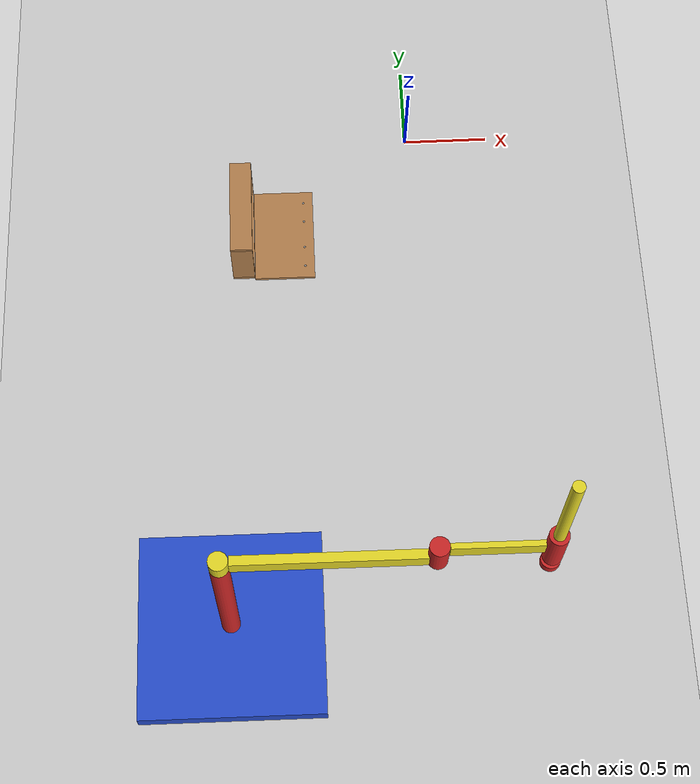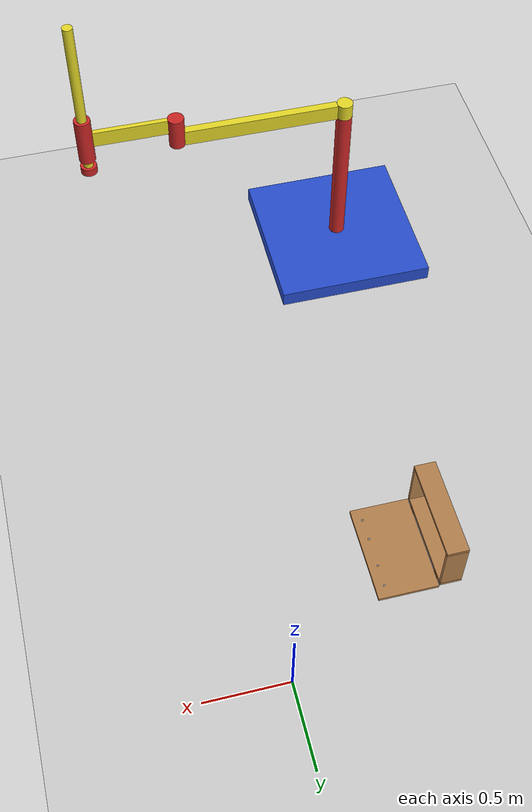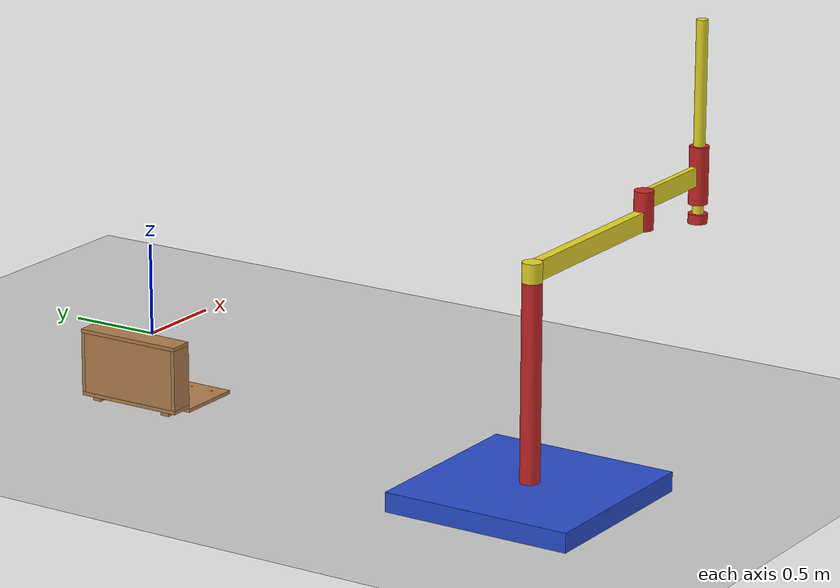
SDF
<sdf version="1.7">
 <world name="default">
  <light name="sun" type="directional">
   <pose>0 0 10 0 -0 0</pose>
   <diffuse>0.8 0.8 0.8 1</diffuse>
   <specular>0.2 0.2 0.2 1</specular>
   <attenuation>
    <range>1000</range>
    <constant>0.9</constant>
    <linear>0.01</linear>
    <quadratic>0.001</quadratic>
   </attenuation>
   <direction>-0.5 0.1 -0.9</direction>
   <spot><inner_angle>0</inner_angle><outer_angle>0</outer_angle><falloff>0</falloff></spot>
  </light>
  <model name="ground_plane">
   <static>1</static>
   <link name="link">
    <collision name="collision">
     <geometry><plane><normal>0 0 1</normal><size>100 100</size></plane></geometry>
     <surface>
      <contact><collide_bitmask>65535</collide_bitmask></contact>
      <friction><ode><mu>100</mu><mu2>50</mu2></ode></friction>
     </surface>
    </collision>
    <visual name="visual">
     <cast_shadows>0</cast_shadows>
     <geometry><plane><normal>0 0 1</normal><size>100 100</size></plane></geometry>
     <material>
      <script><uri>file://media/materials/scripts/gazebo.material</uri><name>Gazebo/Grey</name></script>
     </material>
    </visual>
   </link>
  </model>
  <gravity>0 0 -9.8</gravity>
  <magnetic_field>6e-06 2.3e-05 -4.2e-05</magnetic_field>
  <atmosphere type="adiabatic"/>
  <physics type="ode">
   <max_step_size>0.001</max_step_size>
   <real_time_factor>1</real_time_factor>
   <real_time_update_rate>1000</real_time_update_rate>
  </physics>
  <scene><ambient>0.4 0.4 0.4 1</ambient><background>0.7 0.7 0.7 1</background><shadows>1</shadows></scene>
  <audio><device>default</device></audio>
  <spherical_coordinates>
   <surface_model>EARTH_WGS84</surface_model>
   <latitude_deg>0</latitude_deg>
   <longitude_deg>0</longitude_deg>
   <elevation>0</elevation>
   <heading_deg>0</heading_deg>
  </spherical_coordinates>
  <model name="wooden_case">
   <link name="base">
    <pose>0 0 0.024 0 -0 0</pose>
    <inertial>
     <pose>-0.022184 0 0.171592 0 -0 0</pose>
     <mass>3.96264</mass>
     <inertia>
      <ixx>0.213536</ixx>
      <ixy>0</ixy>
      <ixz>0.000779377</ixz>
      <iyy>0.0708943</iyy>
      <iyz>0</iyz>
      <izz>0.154604</izz>
     </inertia>
    </inertial>
    <collision name="collision_back">
     <pose>-0.053975 0 0.1778 0 -0 0</pose>
     <geometry><box><size>0.01905 0.5461 0.3175</size></box></geometry>
     <surface>
      <contact>
       <poissons_ratio>0.347</poissons_ratio>
       <elastic_modulus>8.8e+09</elastic_modulus>
       <ode><kp>100000</kp><kd>100</kd><max_vel>100</max_vel><min_depth>0.001</min_depth></ode>
      </contact>
      <friction>
       <torsional>
        <coefficient>1</coefficient>
        <use_patch_radius>0</use_patch_radius>
        <surface_radius>0.01</surface_radius>
       </torsional>
      </friction>
     </surface>
    </collision>
    <visual name="visual_back">
     <pose>-0.053975 0 0.1778 0 -0 0</pose>
     <geometry><box><size>0.01905 0.5461 0.3175</size></box></geometry>
     <material>
      <script><uri>file://media/materials/scripts/gazebo.material</uri><name>Gazebo/Wood</name></script>
     </material>
    </visual>
    <collision name="collision_bottom">
     <pose>0 0 0.009525 0 -0 0</pose>
     <geometry><box><size>0.127 0.5842 0.01905</size></box></geometry>
     <surface>
      <contact>
       <poissons_ratio>0.347</poissons_ratio>
       <elastic_modulus>8.8e+09</elastic_modulus>
       <ode><kp>100000</kp><kd>100</kd><max_vel>100</max_vel><min_depth>0.001</min_depth></ode>
      </contact>
      <friction>
       <torsional>
        <coefficient>1</coefficient>
        <use_patch_radius>0</use_patch_radius>
        <surface_radius>0.01</surface_radius>
       </torsional>
      </friction>
     </surface>
    </collision>
    <visual name="visual_bottom">
     <pose>0 0 0.009525 0 -0 0</pose>
     <geometry><box><size>0.127 0.5842 0.01905</size></box></geometry>
     <material>
      <script><uri>file://media/materials/scripts/gazebo.material</uri><name>Gazebo/Wood</name></script>
     </material>
    </visual>
    <collision name="collision_top">
     <pose>0 0 0.346075 0 -0 0</pose>
     <geometry><box><size>0.127 0.5842 0.01905</size></box></geometry>
     <surface>
      <contact>
       <poissons_ratio>0.347</poissons_ratio>
       <elastic_modulus>8.8e+09</elastic_modulus>
       <ode><kp>100000</kp><kd>100</kd><max_vel>100</max_vel><min_depth>0.001</min_depth></ode>
      </contact>
      <friction>
       <torsional>
        <coefficient>1</coefficient>
        <use_patch_radius>0</use_patch_radius>
        <surface_radius>0.01</surface_radius>
       </torsional>
      </friction>
     </surface>
    </collision>
    <visual name="visual_top">
     <pose>0 0 0.346075 0 -0 0</pose>
     <geometry><box><size>0.127 0.5842 0.01905</size></box></geometry>
     <material>
      <script><uri>file://media/materials/scripts/gazebo.material</uri><name>Gazebo/Wood</name></script>
     </material>
    </visual>
    <collision name="collision_left">
     <pose>0 -0.282575 0.1778 0 -0 0</pose>
     <geometry><box><size>0.127 0.01905 0.3175</size></box></geometry>
     <surface>
      <contact>
       <poissons_ratio>0.347</poissons_ratio>
       <elastic_modulus>8.8e+09</elastic_modulus>
       <ode><kp>100000</kp><kd>100</kd><max_vel>100</max_vel><min_depth>0.001</min_depth></ode>
      </contact>
      <friction>
       <torsional>
        <coefficient>1</coefficient>
        <use_patch_radius>0</use_patch_radius>
        <surface_radius>0.01</surface_radius>
       </torsional>
      </friction>
     </surface>
    </collision>
    <visual name="visual_left">
     <pose>0 -0.282575 0.1778 0 -0 0</pose>
     <geometry><box><size>0.127 0.01905 0.3175</size></box></geometry>
     <material>
      <script><uri>file://media/materials/scripts/gazebo.material</uri><name>Gazebo/Wood</name></script>
     </material>
    </visual>
    <collision name="collision_right">
     <pose>0 0.282575 0.1778 0 -0 0</pose>
     <geometry><box><size>0.127 0.01905 0.3175</size></box></geometry>
     <surface>
      <contact>
       <poissons_ratio>0.347</poissons_ratio>
       <elastic_modulus>8.8e+09</elastic_modulus>
       <ode><kp>100000</kp><kd>100</kd><max_vel>100</max_vel><min_depth>0.001</min_depth></ode>
      </contact>
      <friction>
       <torsional>
        <coefficient>1</coefficient>
        <use_patch_radius>0</use_patch_radius>
        <surface_radius>0.01</surface_radius>
       </torsional>
      </friction>
     </surface>
    </collision>
    <visual name="visual_right">
     <pose>0 0.282575 0.1778 0 -0 0</pose>
     <geometry><box><size>0.127 0.01905 0.3175</size></box></geometry>
     <material>
      <script><uri>file://media/materials/scripts/gazebo.material</uri><name>Gazebo/Wood</name></script>
     </material>
    </visual>
    <collision name="collision_block_left">
     <pose>0.0095 -0.2151 -0.012 0 -0 0</pose>
     <geometry><box><size>0.108 0.05 0.024</size></box></geometry>
     <surface>
      <contact>
       <poissons_ratio>0.347</poissons_ratio>
       <elastic_modulus>8.8e+09</elastic_modulus>
       <ode><kp>100000</kp><kd>100</kd><max_vel>100</max_vel><min_depth>0.001</min_depth></ode>
      </contact>
      <friction>
       <torsional>
        <coefficient>1</coefficient>
        <use_patch_radius>0</use_patch_radius>
        <surface_radius>0.01</surface_radius>
       </torsional>
      </friction>
     </surface>
    </collision>
    <visual name="visual_block_left">
     <pose>0.0095 -0.2151 -0.012 0 -0 0</pose>
     <geometry><box><size>0.108 0.05 0.024</size></box></geometry>
     <material>
      <script><uri>file://media/materials/scripts/gazebo.material</uri><name>Gazebo/Wood</name></script>
     </material>
    </visual>
    <collision name="collision_block_right">
     <pose>0.0095 0.2151 -0.012 0 -0 0</pose>
     <geometry><box><size>0.108 0.05 0.024</size></box></geometry>
     <surface>
      <contact>
       <poissons_ratio>0.347</poissons_ratio>
       <elastic_modulus>8.8e+09</elastic_modulus>
       <ode><kp>100000</kp><kd>100</kd><max_vel>100</max_vel><min_depth>0.001</min_depth></ode>
      </contact>
      <friction>
       <torsional>
        <coefficient>1</coefficient>
        <use_patch_radius>0</use_patch_radius>
        <surface_radius>0.01</surface_radius>
       </torsional>
      </friction>
     </surface>
    </collision>
    <visual name="visual_block_right">
     <pose>0.0095 0.2151 -0.012 0 -0 0</pose>
     <geometry><box><size>0.108 0.05 0.024</size></box></geometry>
     <material>
      <script><uri>file://media/materials/scripts/gazebo.material</uri><name>Gazebo/Wood</name></script>
     </material>
    </visual>
   </link>
   <link name="lid">
    <pose>0.243775 0 0.009525 0 -0 0</pose>
    <inertial>
     <mass>1.97874</mass>
     <inertia>
      <ixx>0.0563367</ixx>
      <ixy>0</ixy>
      <ixz>0</ixz>
      <iyy>0.020911</iyy>
      <iyz>0</iyz>
      <izz>0.0771281</izz>
     </inertia>
    </inertial>
    <collision name="collision">
     <geometry><box><size>0.3556 0.5842 0.01905</size></box></geometry>
     <surface>
      <contact>
       <poissons_ratio>0.347</poissons_ratio>
       <elastic_modulus>8.8e+09</elastic_modulus>
       <ode><kp>100000</kp><kd>100</kd><max_vel>100</max_vel><min_depth>0.001</min_depth></ode>
      </contact>
      <friction>
       <torsional>
        <coefficient>1</coefficient>
        <use_patch_radius>0</use_patch_radius>
        <surface_radius>0.01</surface_radius>
       </torsional>
      </friction>
     </surface>
    </collision>
    <visual name="visual">
     <geometry><box><size>0.3556 0.5842 0.01905</size></box></geometry>
     <material>
      <script><uri>file://media/materials/scripts/gazebo.material</uri><name>Gazebo/Wood</name></script>
     </material>
    </visual>
    <visual name="tee_nut_1">
     <pose>0.122 -0.216 0 0 -0 0</pose>
     <geometry><cylinder><radius>0.00635</radius><length>0.0192405</length></cylinder></geometry>
     <material>
      <script><uri>file://media/materials/scripts/gazebo.material</uri><name>Gazebo/Grey</name></script>
     </material>
    </visual>
    <visual name="tee_nut_2">
     <pose>0.122 -0.088 0 0 -0 0</pose>
     <geometry><cylinder><radius>0.00635</radius><length>0.0192405</length></cylinder></geometry>
     <material>
      <script><uri>file://media/materials/scripts/gazebo.material</uri><name>Gazebo/Grey</name></script>
     </material>
    </visual>
    <visual name="tee_nut_3">
     <pose>0.122 0.088 0 0 -0 0</pose>
     <geometry><cylinder><radius>0.00635</radius><length>0.0192405</length></cylinder></geometry>
     <material>
      <script><uri>file://media/materials/scripts/gazebo.material</uri><name>Gazebo/Grey</name></script>
     </material>
    </visual>
    <visual name="tee_nut_4">
     <pose>0.122 0.216 0 0 -0 0</pose>
     <geometry><cylinder><radius>0.00635</radius><length>0.0192405</length></cylinder></geometry>
     <material>
      <script><uri>file://media/materials/scripts/gazebo.material</uri><name>Gazebo/Grey</name></script>
     </material>
    </visual>
   </link>
   <joint name="lid_hinge" type="revolute">
    <pose>-0.1778 0 0.01905 0 -0 0</pose>
    <parent>base</parent>
    <child>lid</child>
    <axis>
     <xyz>0 1 0</xyz>
     <limit><upper>0.523599</upper><lower>-1.5708</lower></limit>
     <dynamics><spring_reference>0</spring_reference><spring_stiffness>0</spring_stiffness></dynamics>
    </axis>
   </joint>
   <pose>-1.01016 -0.640793 -0.001057 0 -0.000429 0</pose>
  </model>
  <model name="simple_arm">
   <link name="arm_base">
    <inertial>
     <pose>0 0 0.00099 0 -0 0</pose>
     <inertia><ixx>1.11</ixx><ixy>0</ixy><ixz>0</ixz><iyy>100.11</iyy><iyz>0</iyz><izz>1.01</izz></inertia>
     <mass>101</mass>
    </inertial>
    <collision name="arm_base_geom">
     <pose>0 0 0.05 0 -0 0</pose>
     <geometry><box><size>1 1 0.1</size></box></geometry>
    </collision>
    <visual name="arm_base_geom_visual">
     <pose>0 0 0.05 0 -0 0</pose>
     <geometry><box><size>1 1 0.1</size></box></geometry>
     <material>
      <script><uri>file://media/materials/scripts/gazebo.material</uri><name>Gazebo/Blue</name></script>
     </material>
    </visual>
    <collision name="arm_base_geom_arm_trunk">
     <pose>0 0 0.6 0 -0 0</pose>
     <geometry><cylinder><radius>0.05</radius><length>1</length></cylinder></geometry>
    </collision>
    <visual name="arm_base_geom_arm_trunk_visual">
     <pose>0 0 0.6 0 -0 0</pose>
     <geometry><cylinder><radius>0.05</radius><length>1</length></cylinder></geometry>
     <material>
      <script><uri>file://media/materials/scripts/gazebo.material</uri><name>Gazebo/Red</name></script>
     </material>
    </visual>
   </link>
   <link name="arm_shoulder_pan">
    <pose>0 0 1.1 0 -0 0</pose>
    <inertial>
     <pose>0.045455 0 0 0 -0 0</pose>
     <inertia><ixx>0.011</ixx><ixy>0</ixy><ixz>0</ixz><iyy>0.0225</iyy><iyz>0</iyz><izz>0.0135</izz></inertia>
     <mass>1.1</mass>
    </inertial>
    <collision name="arm_shoulder_pan_geom">
     <pose>0 0 0.05 0 -0 0</pose>
     <geometry><cylinder><radius>0.05</radius><length>0.1</length></cylinder></geometry>
    </collision>
    <visual name="arm_shoulder_pan_geom_visual">
     <pose>0 0 0.05 0 -0 0</pose>
     <geometry><cylinder><radius>0.05</radius><length>0.1</length></cylinder></geometry>
     <material>
      <script><uri>file://media/materials/scripts/gazebo.material</uri><name>Gazebo/Yellow</name></script>
     </material>
    </visual>
    <collision name="arm_shoulder_pan_geom_arm_shoulder">
     <pose>0.55 0 0.05 0 -0 0</pose>
     <geometry><box><size>1 0.05 0.1</size></box></geometry>
    </collision>
    <visual name="arm_shoulder_pan_geom_arm_shoulder_visual">
     <pose>0.55 0 0.05 0 -0 0</pose>
     <geometry><box><size>1 0.05 0.1</size></box></geometry>
     <material>
      <script><uri>file://media/materials/scripts/gazebo.material</uri><name>Gazebo/Yellow</name></script>
     </material>
    </visual>
   </link>
   <link name="arm_elbow_pan">
    <pose>1.05 0 1.1 0 -0 0</pose>
    <inertial>
     <pose>0.0875 0 0.083333 0 -0 0</pose>
     <inertia>
      <ixx>0.031</ixx>
      <ixy>0</ixy>
      <ixz>0.005</ixz>
      <iyy>0.07275</iyy>
      <iyz>0</iyz>
      <izz>0.04475</izz>
     </inertia>
     <mass>1.2</mass>
    </inertial>
    <collision name="arm_elbow_pan_geom">
     <pose>0 0 0.1 0 -0 0</pose>
     <geometry><cylinder><radius>0.05</radius><length>0.2</length></cylinder></geometry>
    </collision>
    <visual name="arm_elbow_pan_geom_visual">
     <pose>0 0 0.1 0 -0 0</pose>
     <geometry><cylinder><radius>0.05</radius><length>0.2</length></cylinder></geometry>
     <material>
      <script><uri>file://media/materials/scripts/gazebo.material</uri><name>Gazebo/Red</name></script>
     </material>
    </visual>
    <collision name="arm_elbow_pan_geom_arm_elbow">
     <pose>0.3 0 0.15 0 -0 0</pose>
     <geometry><box><size>0.5 0.03 0.1</size></box></geometry>
    </collision>
    <visual name="arm_elbow_pan_geom_arm_elbow_visual">
     <pose>0.3 0 0.15 0 -0 0</pose>
     <geometry><box><size>0.5 0.03 0.1</size></box></geometry>
     <material>
      <script><uri>file://media/materials/scripts/gazebo.material</uri><name>Gazebo/Yellow</name></script>
     </material>
    </visual>
    <collision name="arm_elbow_pan_geom_arm_wrist">
     <pose>0.55 0 0.15 0 -0 0</pose>
     <geometry><cylinder><radius>0.05</radius><length>0.3</length></cylinder></geometry>
    </collision>
    <visual name="arm_elbow_pan_geom_arm_wrist_visual">
     <pose>0.55 0 0.15 0 -0 0</pose>
     <geometry><cylinder><radius>0.05</radius><length>0.3</length></cylinder></geometry>
     <material>
      <script><uri>file://media/materials/scripts/gazebo.material</uri><name>Gazebo/Red</name></script>
     </material>
    </visual>
   </link>
   <link name="arm_wrist_lift">
    <pose>1.6 0 1.05 0 -0 0</pose>
    <inertial>
     <inertia><ixx>0.01</ixx><ixy>0</ixy><ixz>0</ixz><iyy>0.01</iyy><iyz>0</iyz><izz>0.001</izz></inertia>
     <mass>0.1</mass>
    </inertial>
    <collision name="arm_wrist_lift_geom">
     <pose>0 0 0.5 0 -0 0</pose>
     <geometry><cylinder><radius>0.03</radius><length>1</length></cylinder></geometry>
    </collision>
    <visual name="arm_wrist_lift_geom_visual">
     <pose>0 0 0.5 0 -0 0</pose>
     <geometry><cylinder><radius>0.03</radius><length>1</length></cylinder></geometry>
     <material>
      <script><uri>file://media/materials/scripts/gazebo.material</uri><name>Gazebo/Yellow</name></script>
     </material>
    </visual>
   </link>
   <link name="arm_wrist_roll">
    <pose>1.6 0 1 0 -0 0</pose>
    <inertial>
     <inertia><ixx>0.01</ixx><ixy>0</ixy><ixz>0</ixz><iyy>0.01</iyy><iyz>0</iyz><izz>0.001</izz></inertia>
     <mass>0.1</mass>
    </inertial>
    <collision name="arm_wrist_roll_geom">
     <pose>0 0 0.025 0 -0 0</pose>
     <geometry><cylinder><radius>0.05</radius><length>0.05</length></cylinder></geometry>
    </collision>
    <visual name="arm_wrist_roll_geom_visual">
     <pose>0 0 0.025 0 -0 0</pose>
     <geometry><cylinder><radius>0.05</radius><length>0.05</length></cylinder></geometry>
     <material>
      <script><uri>file://media/materials/scripts/gazebo.material</uri><name>Gazebo/Red</name></script>
     </material>
    </visual>
   </link>
   <joint name="arm_shoulder_pan_joint" type="revolute">
    <parent>arm_base</parent>
    <child>arm_shoulder_pan</child>
    <axis>
     <dynamics>
      <damping>1</damping>
      <friction>0</friction>
      <spring_reference>0</spring_reference>
      <spring_stiffness>0</spring_stiffness>
     </dynamics>
     <xyz expressed_in="__model__">0 0 1</xyz>
     <limit><lower>-1e+16</lower><upper>1e+16</upper></limit>
    </axis>
   </joint>
   <joint name="arm_elbow_pan_joint" type="revolute">
    <parent>arm_shoulder_pan</parent>
    <child>arm_elbow_pan</child>
    <axis>
     <dynamics>
      <damping>1</damping>
      <friction>0</friction>
      <spring_reference>0</spring_reference>
      <spring_stiffness>0</spring_stiffness>
     </dynamics>
     <xyz expressed_in="__model__">0 0 1</xyz>
     <limit><lower>-1e+16</lower><upper>1e+16</upper></limit>
    </axis>
   </joint>
   <joint name="arm_wrist_lift_joint" type="prismatic">
    <parent>arm_elbow_pan</parent>
    <child>arm_wrist_lift</child>
    <axis>
     <dynamics>
      <damping>1</damping>
      <friction>0</friction>
      <spring_reference>0</spring_reference>
      <spring_stiffness>0</spring_stiffness>
     </dynamics>
     <limit><lower>-0.8</lower><upper>0.1</upper></limit>
     <xyz expressed_in="__model__">0 0 1</xyz>
    </axis>
   </joint>
   <joint name="arm_wrist_roll_joint" type="revolute">
    <parent>arm_wrist_lift</parent>
    <child>arm_wrist_roll</child>
    <axis>
     <dynamics>
      <damping>1</damping>
      <friction>0</friction>
      <spring_reference>0</spring_reference>
      <spring_stiffness>0</spring_stiffness>
     </dynamics>
     <limit><lower>-2.99999</lower><upper>2.99999</upper></limit>
     <xyz expressed_in="__model__">0 0 1</xyz>
    </axis>
   </joint>
   <pose>-1.10644 -3.05882 -0 0 0 -0.000544</pose>
  </model>
 </world>
</sdf>
